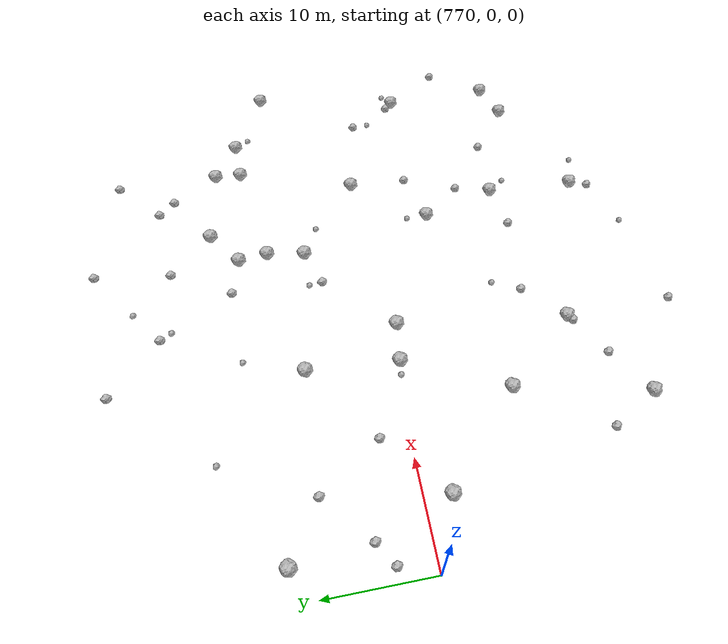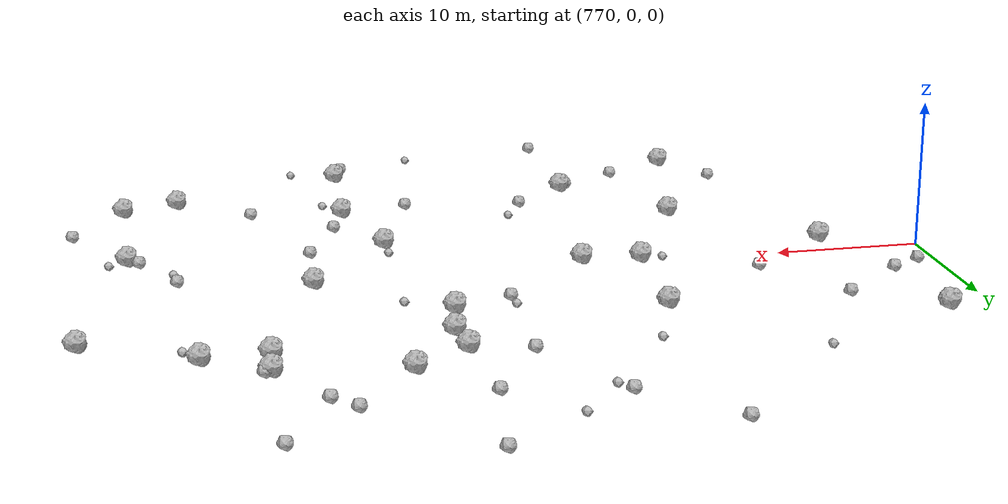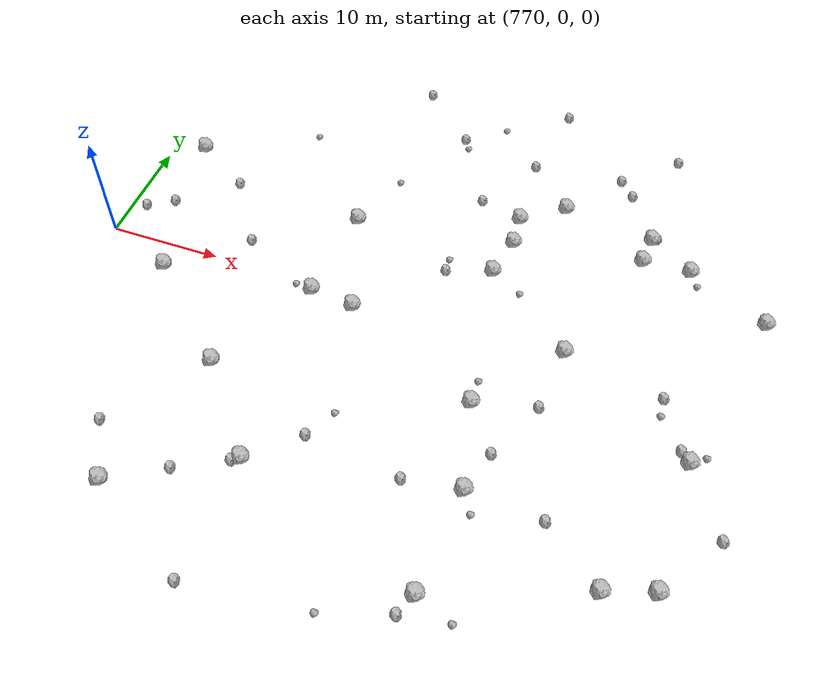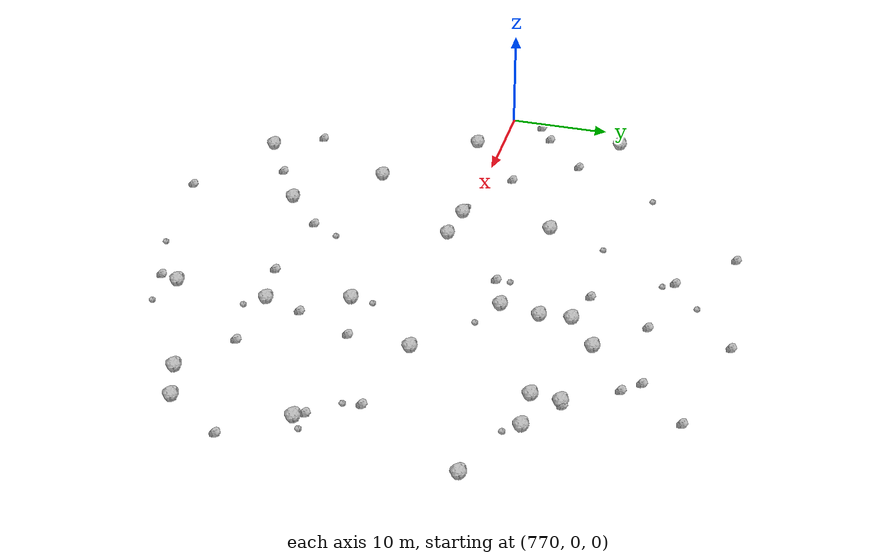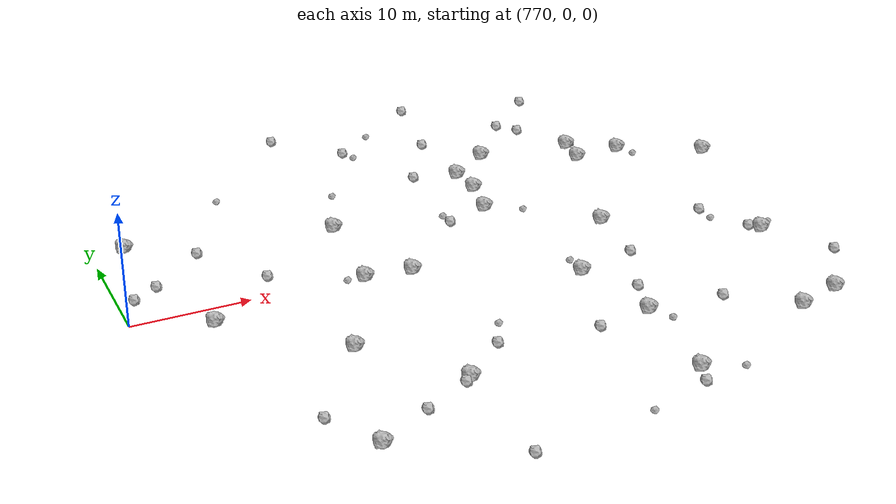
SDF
<sdf version="1.6">
 <world name="default">
  <include><uri>model://sun</uri></include>
  <model name="rock1_20_4">
   <include><uri>model://rock1</uri><pose>815.795839491953 14.781723972565352 0.5 0 0 0</pose></include>
  </model>
  <model name="rock1_20_5">
   <include><uri>model://rock1</uri><pose>772.8721114540692 12.03921356362288 0.5 0 0 0</pose></include>
  </model>
  <model name="rock1_20_6">
   <include><uri>model://rock1</uri><pose>803.5773634806774 6.5244943708118015 0.5 0 0 0</pose></include>
  </model>
  <model name="rock1_20_7">
   <include><uri>model://rock1</uri><pose>807.5736083679507 15.927950460986352 0.5 0 0 0</pose></include>
  </model>
  <model name="rock1_20_8">
   <include><uri>model://rock1</uri><pose>804.2626496257947 10.328278397316566 0.5 0 0 0</pose></include>
  </model>
  <model name="rock1_20_9">
   <include><uri>model://rock1</uri><pose>819.7804297752791 12.22160560498493 0.5 0 0 0</pose></include>
  </model>
  <model name="rock1_20_10">
   <include><uri>model://rock1</uri><pose>782.0622362043885 -23.0810099071625 0.5 0 0 0</pose></include>
  </model>
  <model name="rock1_20_11">
   <include><uri>model://rock1</uri><pose>823.5728797282131 -6.684097453806821 0.5 0 0 0</pose></include>
  </model>
  <model name="rock1_20_12">
   <include><uri>model://rock1</uri><pose>807.6256398479466 -23.616885092054165 0.5 0 0 0</pose></include>
  </model>
  <model name="rock1_20_13">
   <include><uri>model://rock1</uri><pose>784.921651923497 -10.345077740233577 0.5 0 0 0</pose></include>
  </model>
  <model name="rock1_20_14">
   <include><uri>model://rock1</uri><pose>776.273832324843 -2.4980057683412085 0.5 0 0 0</pose></include>
  </model>
  <model name="rock1_20_15">
   <include><uri>model://rock1</uri><pose>791.2501675572274 -17.822018253919083 0.5 0 0 0</pose></include>
  </model>
  <model name="rock1_20_16">
   <include><uri>model://rock1</uri><pose>811.7819484688171 0.2235655905005487 0.5 0 0 0</pose></include>
  </model>
  <model name="rock1_20_17">
   <include><uri>model://rock1</uri><pose>793.5449792700582 -1.1657110862323883 0.5 0 0 0</pose></include>
  </model>
  <model name="rock1_20_18">
   <include><uri>model://rock1</uri><pose>789.5625059052188 -0.6779348806987606 0.5 0 0 0</pose></include>
  </model>
  <model name="rock1_20_19">
   <include><uri>model://rock1</uri><pose>823.6031266654818 -17.735315068553152 0.5 0 0 0</pose></include>
  </model>
  <model name="rock1_20_20">
   <include><uri>model://rock1</uri><pose>806.1428669284282 -7.036921497624924 0.5 0 0 0</pose></include>
  </model>
  <model name="rock1_20_21">
   <include><uri>model://rock1</uri><pose>803.968983890107 13.280181321705847 0.5 0 0 0</pose></include>
  </model>
  <model name="rock1_20_22">
   <include><uri>model://rock1</uri><pose>826.8645540929427 8.653493785539666 0.5 0 0 0</pose></include>
  </model>
  <model name="rock1_20_23">
   <include><uri>model://rock1</uri><pose>815.564592234071 12.0696359849032 0.5 0 0 0</pose></include>
  </model>
  <model name="rock1_20_24">
   <include><uri>model://rock1</uri><pose>819.7330445496482 -19.019979411799532 0.5 0 0 0</pose></include>
  </model>
  <model name="rock1_20_25">
   <include><uri>model://rock1</uri><pose>790.1960460227156 8.29034360599993 0.5 0 0 0</pose></include>
  </model>
  <model name="rock1_20_26">
   <include><uri>model://rock1</uri><pose>808.1503735604816 -14.633296725079514 0.5 0 0 0</pose></include>
  </model>
  <model name="rock2_20_0">
   <include><uri>model://rock2</uri><pose>803.3758412862758 -15.37548266718396 0.3 0 0 0</pose></include>
  </model>
  <model name="rock2_20_1">
   <include><uri>model://rock2</uri><pose>790.7897147121204 26.606876480101455 0.3 0 0 0</pose></include>
  </model>
  <model name="rock2_20_2">
   <include><uri>model://rock2</uri><pose>811.3367418452885 -5.693248559686225 0.3 0 0 0</pose></include>
  </model>
  <model name="rock2_20_3">
   <include><uri>model://rock2</uri><pose>799.6968401336496 5.23546054549103 0.3 0 0 0</pose></include>
  </model>
  <model name="rock2_20_4">
   <include><uri>model://rock2</uri><pose>771.3504957160883 3.3902645866591072 0.3 0 0 0</pose></include>
  </model>
  <model name="rock2_20_5">
   <include><uri>model://rock2</uri><pose>803.4221903145639 20.2544522082987 0.3 0 0 0</pose></include>
  </model>
  <model name="rock2_20_6">
   <include><uri>model://rock2</uri><pose>822.7454589701385 -5.861045808838931 0.3 0 0 0</pose></include>
  </model>
  <model name="rock2_20_7">
   <include><uri>model://rock2</uri><pose>795.9965389547855 21.574057210607037 0.3 0 0 0</pose></include>
  </model>
  <model name="rock2_20_8">
   <include><uri>model://rock2</uri><pose>814.6048045705446 -15.118289050286254 0.3 0 0 0</pose></include>
  </model>
  <model name="rock2_20_9">
   <include><uri>model://rock2</uri><pose>791.3096715504583 -28.437604237402564 0.3 0 0 0</pose></include>
  </model>
  <model name="rock2_20_10">
   <include><uri>model://rock2</uri><pose>782.2805389227858 2.7029494830723593 0.3 0 0 0</pose></include>
  </model>
  <model name="rock2_20_11">
   <include><uri>model://rock2</uri><pose>795.0672574180545 -14.277691891191193 0.3 0 0 0</pose></include>
  </model>
  <model name="rock2_20_12">
   <include><uri>model://rock2</uri><pose>811.4894006298639 21.11751711489795 0.3 0 0 0</pose></include>
  </model>
  <model name="rock2_20_13">
   <include><uri>model://rock2</uri><pose>827.1335805300778 -12.306782637948984 0.3 0 0 0</pose></include>
  </model>
  <model name="rock2_20_14">
   <include><uri>model://rock2</uri><pose>786.6218170298 -20.40314907162035 0.3 0 0 0</pose></include>
  </model>
  <model name="rock2_20_15">
   <include><uri>model://rock2</uri><pose>812.9010017930854 19.502926133693293 0.3 0 0 0</pose></include>
  </model>
  <model name="rock2_20_16">
   <include><uri>model://rock2</uri><pose>773.5510285344673 4.756028071712883 0.3 0 0 0</pose></include>
  </model>
  <model name="rock2_20_17">
   <include><uri>model://rock2</uri><pose>809.1146407210733 -11.01062993157704 0.3 0 0 0</pose></include>
  </model>
  <model name="rock2_20_18">
   <include><uri>model://rock2</uri><pose>779.3551442422462 -18.43418299238839 0.3 0 0 0</pose></include>
  </model>
  <model name="rock2_20_19">
   <include><uri>model://rock2</uri><pose>806.8973968090525 -25.453861531343694 0.3 0 0 0</pose></include>
  </model>
  <model name="rock2_20_20">
   <include><uri>model://rock2</uri><pose>800.075410287614 14.321531975059358 0.3 0 0 0</pose></include>
  </model>
  <model name="rock2_20_21">
   <include><uri>model://rock2</uri><pose>790.644935027307 -18.24721652883524 0.3 0 0 0</pose></include>
  </model>
  <model name="rock2_20_22">
   <include><uri>model://rock2</uri><pose>820.4183964530143 -1.5414113993605874 0.3 0 0 0</pose></include>
  </model>
  <model name="rock2_20_23">
   <include><uri>model://rock2</uri><pose>815.9607982926174 25.30161993202293 0.3 0 0 0</pose></include>
  </model>
  <model name="rock2_20_24">
   <include><uri>model://rock2</uri><pose>804.5424774225685 27.935372331156657 0.3 0 0 0</pose></include>
  </model>
  <model name="rock2_20_25">
   <include><uri>model://rock2</uri><pose>778.146683634877 8.756370749919896 0.3 0 0 0</pose></include>
  </model>
  <model name="rock2_20_26">
   <include><uri>model://rock2</uri><pose>816.171137902287 15.041062847697681 0.3 0 0 0</pose></include>
  </model>
  <model name="rock3_20_0">
   <include><uri>model://rock3</uri><pose>792.1211166069735 13.960224357325593 0.2 0 0 0</pose></include>
  </model>
  <model name="rock3_20_1">
   <include><uri>model://rock3</uri><pose>806.4830774778111 4.859534337518312 0.2 0 0 0</pose></include>
  </model>
  <model name="rock3_20_2">
   <include><uri>model://rock3</uri><pose>824.7065550866649 -5.843855421240271 0.2 0 0 0</pose></include>
  </model>
  <model name="rock3_20_3">
   <include><uri>model://rock3</uri><pose>806.0517858909539 -4.962374616699815 0.2 0 0 0</pose></include>
  </model>
  <model name="rock3_20_4">
   <include><uri>model://rock3</uri><pose>796.6216101457971 20.429005315474548 0.2 0 0 0</pose></include>
  </model>
  <model name="rock3_20_5">
   <include><uri>model://rock3</uri><pose>801.5127041248501 -27.27354853493716 0.2 0 0 0</pose></include>
  </model>
  <model name="rock3_20_6">
   <include><uri>model://rock3</uri><pose>796.3903657195018 -11.644853353472794 0.2 0 0 0</pose></include>
  </model>
  <model name="rock3_20_7">
   <include><uri>model://rock3</uri><pose>820.6191482748573 10.784334169195745 0.2 0 0 0</pose></include>
  </model>
  <model name="rock3_20_8">
   <include><uri>model://rock3</uri><pose>799.3210775036048 24.08782966938454 0.2 0 0 0</pose></include>
  </model>
  <model name="rock3_20_9">
   <include><uri>model://rock3</uri><pose>788.0384274870701 -0.5294433557443199 0.2 0 0 0</pose></include>
  </model>
  <model name="rock3_20_10">
   <include><uri>model://rock3</uri><pose>799.5602111419613 6.519730916310166 0.2 0 0 0</pose></include>
  </model>
  <model name="rock3_20_11">
   <include><uri>model://rock3</uri><pose>809.2701937565407 -16.452595400365844 0.2 0 0 0</pose></include>
  </model>
  <model name="rock3_20_12">
   <include><uri>model://rock3</uri><pose>820.556622580622 -3.2599727784882973 0.2 0 0 0</pose></include>
  </model>
  <model name="rock3_20_13">
   <include><uri>model://rock3</uri><pose>782.4771835326853 17.14629601855686 0.2 0 0 0</pose></include>
  </model>
  <model name="rock3_20_14">
   <include><uri>model://rock3</uri><pose>810.772087998563 -24.824628843893382 0.2 0 0 0</pose></include>
  </model>
 </world>
</sdf>
